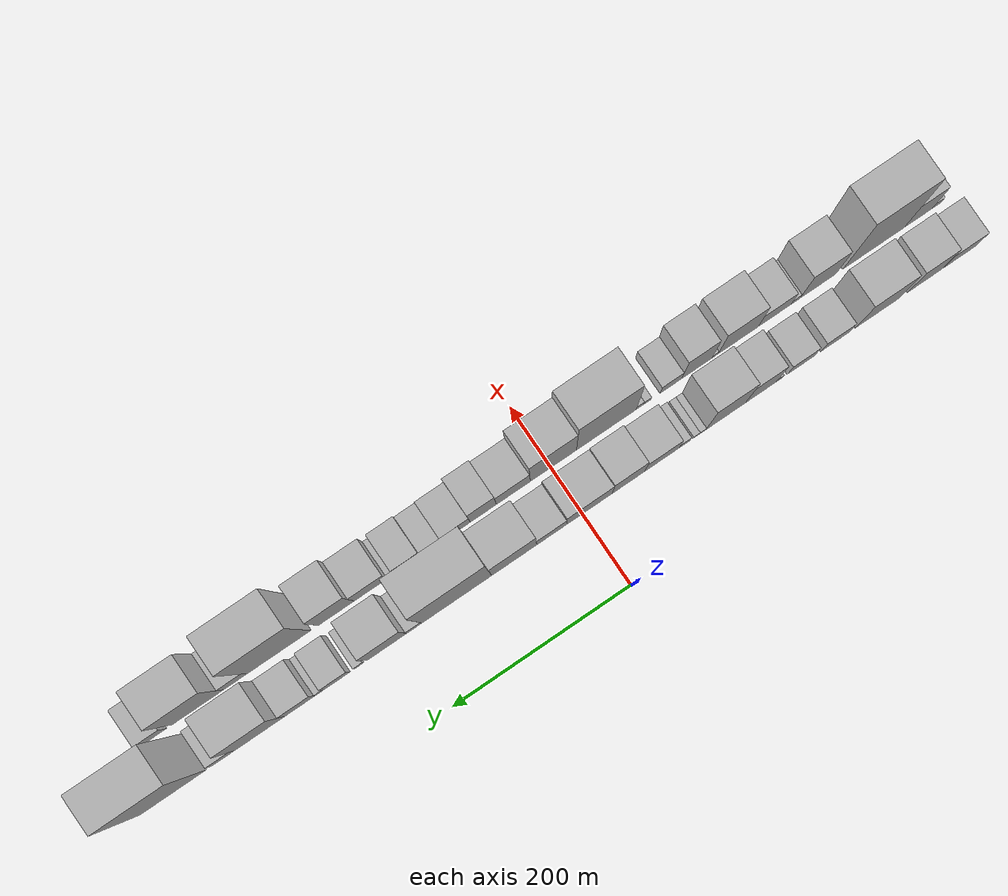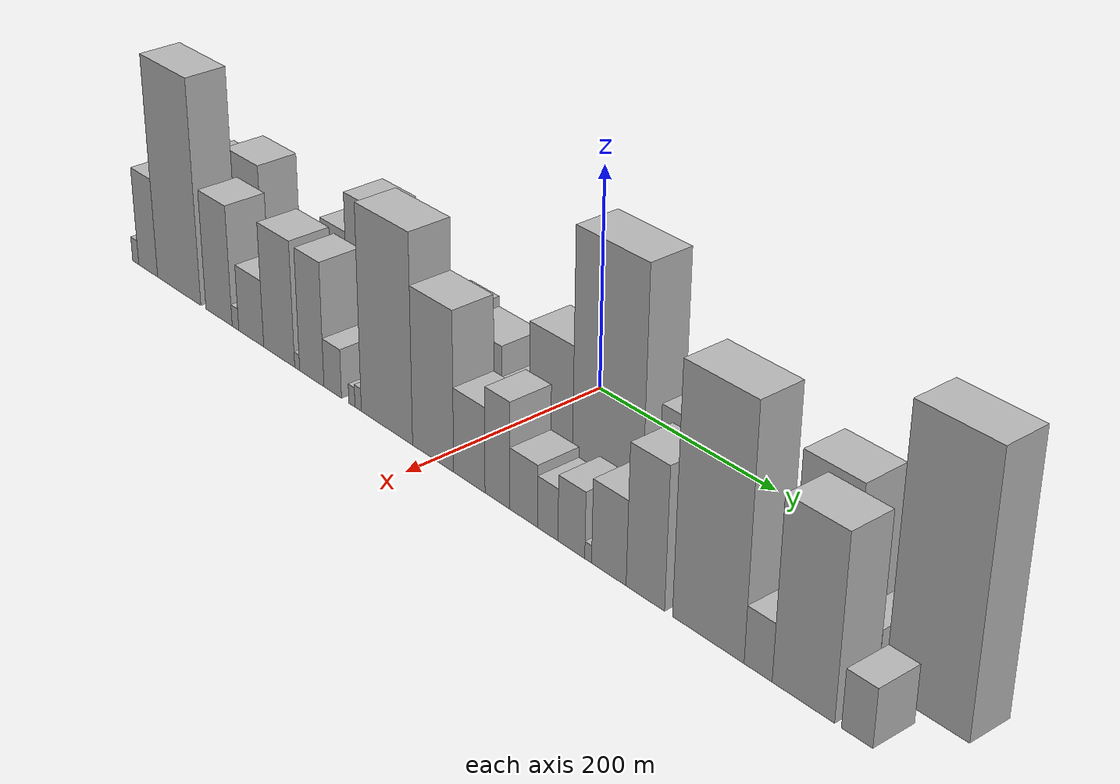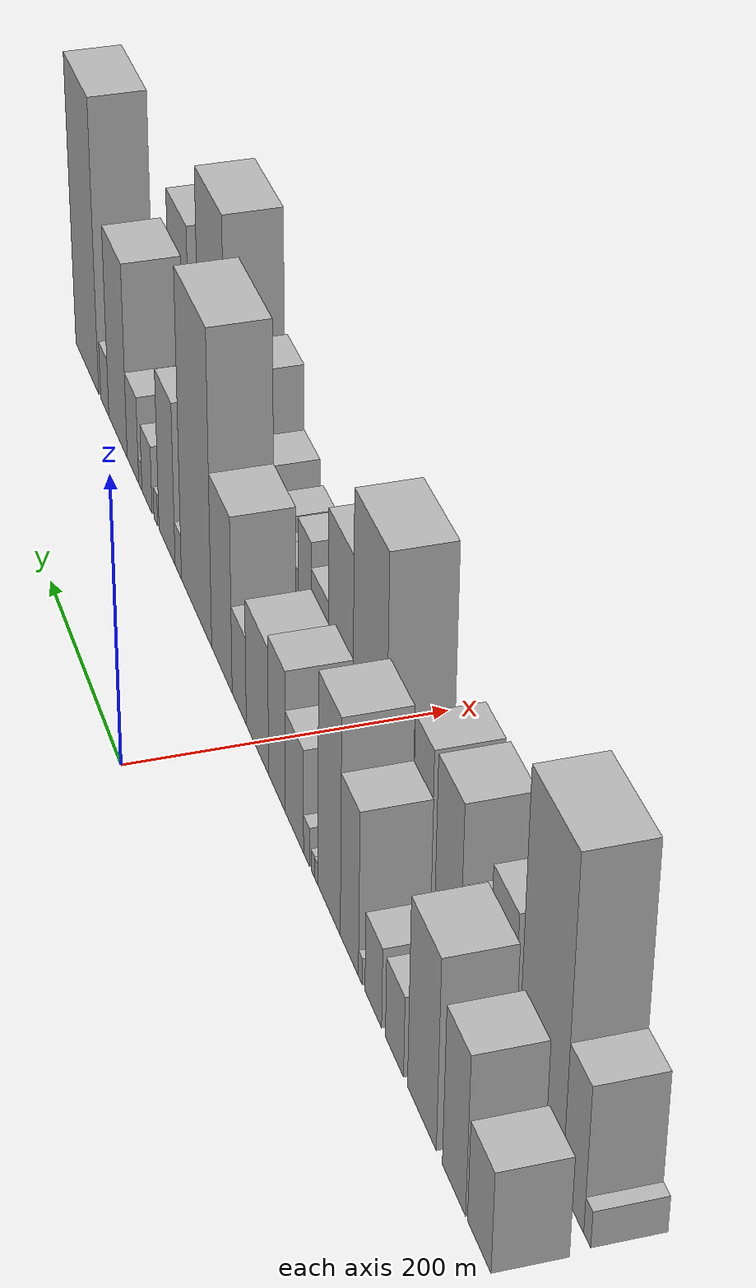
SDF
<sdf version="1.6">
 <world name="default">
  <scene>
   <sky><clouds><speed>12</speed></clouds></sky>
   <ambient>0.4 0.4 0.4 1</ambient>
   <background>0.7 0.7 0.7 1</background>
   <shadows>1</shadows>
  </scene>
  <gravity>0 0 -9.8066</gravity>
  <magnetic_field>6e-06 2.3e-05 -4.2e-05</magnetic_field>
  <physics default="0" name="default_physics" type="ode">
   <ode>
    <solver>
     <type>quick</type>
     <iters>10</iters>
     <sor>1.0</sor>
     <use_dynamic_moi_rescaling>0</use_dynamic_moi_rescaling>
    </solver>
    <constraints>
     <cfm>0</cfm>
     <erp>0.2</erp>
     <contact_max_correcting_vel>100</contact_max_correcting_vel>
     <contact_surface_layer>0.001</contact_surface_layer>
    </constraints>
   </ode>
   <max_step_size>0.004</max_step_size>
   <real_time_factor>1</real_time_factor>
   <real_time_update_rate>250</real_time_update_rate>
  </physics>
  <light name="sun" type="directional">
   <pose>0 0 10 0 0 0</pose>
   <diffuse>0.8 0.8 0.8 1</diffuse>
   <specular>0.2 0.2 0.2 1</specular>
   <attenuation>
    <range>1000</range>
    <constant>0.9</constant>
    <linear>0.01</linear>
    <quadratic>0.001</quadratic>
   </attenuation>
   <direction>-0.5 0.1 -0.9</direction>
  </light>
  <model name="building_1">
   <static>1</static>
   <pose>100.0000 -425.5980 0 0.000000 0.000000 0.000000</pose>
   <link name="link">
    <pose>0 0 33.00 0 0 0</pose>
    <collision name="collision"><geometry><box><size>40.0000 36.8039 66.0000</size></box></geometry></collision>
    <visual name="visual">
     <cast_shadows>0</cast_shadows>
     <geometry><box><size>40.0000 36.8039 66.0000</size></box></geometry>
     <material>
      <script>
       <uri>model://HANNAS_wall/materials/scripts</uri>
       <uri>model://HANNAS_wall/materials/textures</uri>
       <name>vrc/HANNAS_wall</name>
      </script>
     </material>
    </visual>
   </link>
  </model>
  <model name="building_2">
   <static>1</static>
   <pose>100.0000 -385.3011 0 0.000000 0.000000 0.000000</pose>
   <link name="link">
    <pose>0 0 52.50 0 0 0</pose>
    <collision name="collision"><geometry><box><size>40.0000 37.7899 105.0000</size></box></geometry></collision>
    <visual name="visual">
     <cast_shadows>0</cast_shadows>
     <geometry><box><size>40.0000 37.7899 105.0000</size></box></geometry>
     <material>
      <script>
       <uri>model://HANNAS_wall/materials/scripts</uri>
       <uri>model://HANNAS_wall/materials/textures</uri>
       <name>vrc/HANNAS_wall</name>
      </script>
     </material>
    </visual>
   </link>
  </model>
  <model name="building_3">
   <static>1</static>
   <pose>100.0000 -331.7392 0 0.000000 0.000000 0.000000</pose>
   <link name="link">
    <pose>0 0 63.00 0 0 0</pose>
    <collision name="collision"><geometry><box><size>40.0000 49.3339 126.0000</size></box></geometry></collision>
    <visual name="visual">
     <cast_shadows>0</cast_shadows>
     <geometry><box><size>40.0000 49.3339 126.0000</size></box></geometry>
     <material>
      <script>
       <uri>model://HANNAS_wall/materials/scripts</uri>
       <uri>model://HANNAS_wall/materials/textures</uri>
       <name>vrc/HANNAS_wall</name>
      </script>
     </material>
    </visual>
   </link>
  </model>
  <model name="building_4">
   <static>1</static>
   <pose>100.0000 -283.8848 0 0.000000 0.000000 0.000000</pose>
   <link name="link">
    <pose>0 0 27.00 0 0 0</pose>
    <collision name="collision"><geometry><box><size>40.0000 32.3749 54.0000</size></box></geometry></collision>
    <visual name="visual">
     <cast_shadows>0</cast_shadows>
     <geometry><box><size>40.0000 32.3749 54.0000</size></box></geometry>
     <material>
      <script>
       <uri>model://HANNAS_wall/materials/scripts</uri>
       <uri>model://HANNAS_wall/materials/textures</uri>
       <name>vrc/HANNAS_wall</name>
      </script>
     </material>
    </visual>
   </link>
  </model>
  <model name="building_5">
   <static>1</static>
   <pose>100.0000 -245.2788 0 0.000000 0.000000 0.000000</pose>
   <link name="link">
    <pose>0 0 27.00 0 0 0</pose>
    <collision name="collision"><geometry><box><size>40.0000 30.8370 54.0000</size></box></geometry></collision>
    <visual name="visual">
     <cast_shadows>0</cast_shadows>
     <geometry><box><size>40.0000 30.8370 54.0000</size></box></geometry>
     <material>
      <script>
       <uri>model://HANNAS_wall/materials/scripts</uri>
       <uri>model://HANNAS_wall/materials/textures</uri>
       <name>vrc/HANNAS_wall</name>
      </script>
     </material>
    </visual>
   </link>
  </model>
  <model name="building_6">
   <static>1</static>
   <pose>100.0000 -221.1470 0 0.000000 0.000000 0.000000</pose>
   <link name="link">
    <pose>0 0 9.00 0 0 0</pose>
    <collision name="collision"><geometry><box><size>40.0000 7.4267 18.0000</size></box></geometry></collision>
    <visual name="visual">
     <cast_shadows>0</cast_shadows>
     <geometry><box><size>40.0000 7.4267 18.0000</size></box></geometry>
     <material>
      <script>
       <uri>model://HANNAS_wall/materials/scripts</uri>
       <uri>model://HANNAS_wall/materials/textures</uri>
       <name>vrc/HANNAS_wall</name>
      </script>
     </material>
    </visual>
   </link>
  </model>
  <model name="building_7">
   <static>1</static>
   <pose>100.0000 -199.9410 0 0.000000 0.000000 0.000000</pose>
   <link name="link">
    <pose>0 0 55.50 0 0 0</pose>
    <collision name="collision"><geometry><box><size>40.0000 34.9854 111.0000</size></box></geometry></collision>
    <visual name="visual">
     <cast_shadows>0</cast_shadows>
     <geometry><box><size>40.0000 34.9854 111.0000</size></box></geometry>
     <material>
      <script>
       <uri>model://HANNAS_wall/materials/scripts</uri>
       <uri>model://HANNAS_wall/materials/textures</uri>
       <name>vrc/HANNAS_wall</name>
      </script>
     </material>
    </visual>
   </link>
  </model>
  <model name="building_8">
   <static>1</static>
   <pose>100.0000 -160.2202 0 0.000000 0.000000 0.000000</pose>
   <link name="link">
    <pose>0 0 73.50 0 0 0</pose>
    <collision name="collision"><geometry><box><size>40.0000 44.4563 147.0000</size></box></geometry></collision>
    <visual name="visual">
     <cast_shadows>0</cast_shadows>
     <geometry><box><size>40.0000 44.4563 147.0000</size></box></geometry>
     <material>
      <script>
       <uri>model://HANNAS_wall/materials/scripts</uri>
       <uri>model://HANNAS_wall/materials/textures</uri>
       <name>vrc/HANNAS_wall</name>
      </script>
     </material>
    </visual>
   </link>
  </model>
  <model name="building_9">
   <static>1</static>
   <pose>100.0000 -134.4375 0 0.000000 0.000000 0.000000</pose>
   <link name="link">
    <pose>0 0 7.50 0 0 0</pose>
    <collision name="collision"><geometry><box><size>40.0000 7.1090 15.0000</size></box></geometry></collision>
    <visual name="visual">
     <cast_shadows>0</cast_shadows>
     <geometry><box><size>40.0000 7.1090 15.0000</size></box></geometry>
     <material>
      <script>
       <uri>model://HANNAS_wall/materials/scripts</uri>
       <uri>model://HANNAS_wall/materials/textures</uri>
       <name>vrc/HANNAS_wall</name>
      </script>
     </material>
    </visual>
   </link>
  </model>
  <model name="building_10">
   <static>1</static>
   <pose>100.0000 -127.1507 0 0.000000 0.000000 0.000000</pose>
   <link name="link">
    <pose>0 0 7.50 0 0 0</pose>
    <collision name="collision"><geometry><box><size>40.0000 7.4647 15.0000</size></box></geometry></collision>
    <visual name="visual">
     <cast_shadows>0</cast_shadows>
     <geometry><box><size>40.0000 7.4647 15.0000</size></box></geometry>
     <material>
      <script>
       <uri>model://HANNAS_wall/materials/scripts</uri>
       <uri>model://HANNAS_wall/materials/textures</uri>
       <name>vrc/HANNAS_wall</name>
      </script>
     </material>
    </visual>
   </link>
  </model>
  <model name="building_11">
   <static>1</static>
   <pose>100.0000 -114.1948 0 0.000000 0.000000 0.000000</pose>
   <link name="link">
    <pose>0 0 13.50 0 0 0</pose>
    <collision name="collision"><geometry><box><size>40.0000 12.4471 27.0000</size></box></geometry></collision>
    <visual name="visual">
     <cast_shadows>0</cast_shadows>
     <geometry><box><size>40.0000 12.4471 27.0000</size></box></geometry>
     <material>
      <script>
       <uri>model://HANNAS_wall/materials/scripts</uri>
       <uri>model://HANNAS_wall/materials/textures</uri>
       <name>vrc/HANNAS_wall</name>
      </script>
     </material>
    </visual>
   </link>
  </model>
  <model name="building_12">
   <static>1</static>
   <pose>100.0000 -88.6008 0 0.000000 0.000000 0.000000</pose>
   <link name="link">
    <pose>0 0 36.00 0 0 0</pose>
    <collision name="collision"><geometry><box><size>40.0000 38.7409 72.0000</size></box></geometry></collision>
    <visual name="visual">
     <cast_shadows>0</cast_shadows>
     <geometry><box><size>40.0000 38.7409 72.0000</size></box></geometry>
     <material>
      <script>
       <uri>model://HANNAS_wall/materials/scripts</uri>
       <uri>model://HANNAS_wall/materials/textures</uri>
       <name>vrc/HANNAS_wall</name>
      </script>
     </material>
    </visual>
   </link>
  </model>
  <model name="building_13">
   <static>1</static>
   <pose>100.0000 -50.9353 0 0.000000 0.000000 0.000000</pose>
   <link name="link">
    <pose>0 0 49.50 0 0 0</pose>
    <collision name="collision"><geometry><box><size>40.0000 36.5901 99.0000</size></box></geometry></collision>
    <visual name="visual">
     <cast_shadows>0</cast_shadows>
     <geometry><box><size>40.0000 36.5901 99.0000</size></box></geometry>
     <material>
      <script>
       <uri>model://HANNAS_wall/materials/scripts</uri>
       <uri>model://HANNAS_wall/materials/textures</uri>
       <name>vrc/HANNAS_wall</name>
      </script>
     </material>
    </visual>
   </link>
  </model>
  <model name="building_14">
   <static>1</static>
   <pose>100.0000 -7.1161 0 0.000000 0.000000 0.000000</pose>
   <link name="link">
    <pose>0 0 45.00 0 0 0</pose>
    <collision name="collision"><geometry><box><size>40.0000 51.0484 90.0000</size></box></geometry></collision>
    <visual name="visual">
     <cast_shadows>0</cast_shadows>
     <geometry><box><size>40.0000 51.0484 90.0000</size></box></geometry>
     <material>
      <script>
       <uri>model://HANNAS_wall/materials/scripts</uri>
       <uri>model://HANNAS_wall/materials/textures</uri>
       <name>vrc/HANNAS_wall</name>
      </script>
     </material>
    </visual>
   </link>
  </model>
  <model name="building_15">
   <static>1</static>
   <pose>100.0000 35.0644 0 0.000000 0.000000 0.000000</pose>
   <link name="link">
    <pose>0 0 31.50 0 0 0</pose>
    <collision name="collision"><geometry><box><size>40.0000 33.3125 63.0000</size></box></geometry></collision>
    <visual name="visual">
     <cast_shadows>0</cast_shadows>
     <geometry><box><size>40.0000 33.3125 63.0000</size></box></geometry>
     <material>
      <script>
       <uri>model://HANNAS_wall/materials/scripts</uri>
       <uri>model://HANNAS_wall/materials/textures</uri>
       <name>vrc/HANNAS_wall</name>
      </script>
     </material>
    </visual>
   </link>
  </model>
  <model name="building_16">
   <static>1</static>
   <pose>100.0000 76.6523 0 0.000000 0.000000 0.000000</pose>
   <link name="link">
    <pose>0 0 63.00 0 0 0</pose>
    <collision name="collision"><geometry><box><size>40.0000 49.8633 126.0000</size></box></geometry></collision>
    <visual name="visual">
     <cast_shadows>0</cast_shadows>
     <geometry><box><size>40.0000 49.8633 126.0000</size></box></geometry>
     <material>
      <script>
       <uri>model://HANNAS_wall/materials/scripts</uri>
       <uri>model://HANNAS_wall/materials/textures</uri>
       <name>vrc/HANNAS_wall</name>
      </script>
     </material>
    </visual>
   </link>
  </model>
  <model name="building_17">
   <static>1</static>
   <pose>100.0000 140.3961 0 0.000000 0.000000 0.000000</pose>
   <link name="link">
    <pose>0 0 112.50 0 0 0</pose>
    <collision name="collision"><geometry><box><size>40.0000 77.6243 225.0000</size></box></geometry></collision>
    <visual name="visual">
     <cast_shadows>0</cast_shadows>
     <geometry><box><size>40.0000 77.6243 225.0000</size></box></geometry>
     <material>
      <script>
       <uri>model://HANNAS_wall/materials/scripts</uri>
       <uri>model://HANNAS_wall/materials/textures</uri>
       <name>vrc/HANNAS_wall</name>
      </script>
     </material>
    </visual>
   </link>
  </model>
  <model name="building_18">
   <static>1</static>
   <pose>100.0000 187.5888 0 0.000000 0.000000 0.000000</pose>
   <link name="link">
    <pose>0 0 16.50 0 0 0</pose>
    <collision name="collision"><geometry><box><size>40.0000 16.7612 33.0000</size></box></geometry></collision>
    <visual name="visual">
     <cast_shadows>0</cast_shadows>
     <geometry><box><size>40.0000 16.7612 33.0000</size></box></geometry>
     <material>
      <script>
       <uri>model://HANNAS_wall/materials/scripts</uri>
       <uri>model://HANNAS_wall/materials/textures</uri>
       <name>vrc/HANNAS_wall</name>
      </script>
     </material>
    </visual>
   </link>
  </model>
  <model name="building_19">
   <static>1</static>
   <pose>100.0000 217.8704 0 0.000000 0.000000 0.000000</pose>
   <link name="link">
    <pose>0 0 60.00 0 0 0</pose>
    <collision name="collision"><geometry><box><size>40.0000 43.8018 120.0000</size></box></geometry></collision>
    <visual name="visual">
     <cast_shadows>0</cast_shadows>
     <geometry><box><size>40.0000 43.8018 120.0000</size></box></geometry>
     <material>
      <script>
       <uri>model://HANNAS_wall/materials/scripts</uri>
       <uri>model://HANNAS_wall/materials/textures</uri>
       <name>vrc/HANNAS_wall</name>
      </script>
     </material>
    </visual>
   </link>
  </model>
  <model name="building_20">
   <static>1</static>
   <pose>100.0000 248.9508 0 0.000000 0.000000 0.000000</pose>
   <link name="link">
    <pose>0 0 12.00 0 0 0</pose>
    <collision name="collision"><geometry><box><size>40.0000 10.3591 24.0000</size></box></geometry></collision>
    <visual name="visual">
     <cast_shadows>0</cast_shadows>
     <geometry><box><size>40.0000 10.3591 24.0000</size></box></geometry>
     <material>
      <script>
       <uri>model://HANNAS_wall/materials/scripts</uri>
       <uri>model://HANNAS_wall/materials/textures</uri>
       <name>vrc/HANNAS_wall</name>
      </script>
     </material>
    </visual>
   </link>
  </model>
  <model name="building_21">
   <static>1</static>
   <pose>100.0000 273.5681 0 0.000000 0.000000 0.000000</pose>
   <link name="link">
    <pose>0 0 25.50 0 0 0</pose>
    <collision name="collision"><geometry><box><size>40.0000 28.8756 51.0000</size></box></geometry></collision>
    <visual name="visual">
     <cast_shadows>0</cast_shadows>
     <geometry><box><size>40.0000 28.8756 51.0000</size></box></geometry>
     <material>
      <script>
       <uri>model://HANNAS_wall/materials/scripts</uri>
       <uri>model://HANNAS_wall/materials/textures</uri>
       <name>vrc/HANNAS_wall</name>
      </script>
     </material>
    </visual>
   </link>
  </model>
  <model name="building_22">
   <static>1</static>
   <pose>100.0000 292.6684 0 0.000000 0.000000 0.000000</pose>
   <link name="link">
    <pose>0 0 10.50 0 0 0</pose>
    <collision name="collision"><geometry><box><size>40.0000 9.3250 21.0000</size></box></geometry></collision>
    <visual name="visual">
     <cast_shadows>0</cast_shadows>
     <geometry><box><size>40.0000 9.3250 21.0000</size></box></geometry>
     <material>
      <script>
       <uri>model://HANNAS_wall/materials/scripts</uri>
       <uri>model://HANNAS_wall/materials/textures</uri>
       <name>vrc/HANNAS_wall</name>
      </script>
     </material>
    </visual>
   </link>
  </model>
  <model name="building_23">
   <static>1</static>
   <pose>100.0000 314.0766 0 0.000000 0.000000 0.000000</pose>
   <link name="link">
    <pose>0 0 33.00 0 0 0</pose>
    <collision name="collision"><geometry><box><size>40.0000 33.4914 66.0000</size></box></geometry></collision>
    <visual name="visual">
     <cast_shadows>0</cast_shadows>
     <geometry><box><size>40.0000 33.4914 66.0000</size></box></geometry>
     <material>
      <script>
       <uri>model://HANNAS_wall/materials/scripts</uri>
       <uri>model://HANNAS_wall/materials/textures</uri>
       <name>vrc/HANNAS_wall</name>
      </script>
     </material>
    </visual>
   </link>
  </model>
  <model name="building_24">
   <static>1</static>
   <pose>100.0000 358.5676 0 0.000000 0.000000 0.000000</pose>
   <link name="link">
    <pose>0 0 73.50 0 0 0</pose>
    <collision name="collision"><geometry><box><size>40.0000 55.4907 147.0000</size></box></geometry></collision>
    <visual name="visual">
     <cast_shadows>0</cast_shadows>
     <geometry><box><size>40.0000 55.4907 147.0000</size></box></geometry>
     <material>
      <script>
       <uri>model://HANNAS_wall/materials/scripts</uri>
       <uri>model://HANNAS_wall/materials/textures</uri>
       <name>vrc/HANNAS_wall</name>
      </script>
     </material>
    </visual>
   </link>
  </model>
  <model name="building_25">
   <static>1</static>
   <pose>100.0000 399.0191 0 0.000000 0.000000 0.000000</pose>
   <link name="link">
    <pose>0 0 22.50 0 0 0</pose>
    <collision name="collision"><geometry><box><size>40.0000 25.4123 45.0000</size></box></geometry></collision>
    <visual name="visual">
     <cast_shadows>0</cast_shadows>
     <geometry><box><size>40.0000 25.4123 45.0000</size></box></geometry>
     <material>
      <script>
       <uri>model://HANNAS_wall/materials/scripts</uri>
       <uri>model://HANNAS_wall/materials/textures</uri>
       <name>vrc/HANNAS_wall</name>
      </script>
     </material>
    </visual>
   </link>
  </model>
  <model name="building_26">
   <static>1</static>
   <pose>100.0000 454.3628 0 0.000000 0.000000 0.000000</pose>
   <link name="link">
    <pose>0 0 112.50 0 0 0</pose>
    <collision name="collision"><geometry><box><size>40.0000 73.2751 225.0000</size></box></geometry></collision>
    <visual name="visual">
     <cast_shadows>0</cast_shadows>
     <geometry><box><size>40.0000 73.2751 225.0000</size></box></geometry>
     <material>
      <script>
       <uri>model://HANNAS_wall/materials/scripts</uri>
       <uri>model://HANNAS_wall/materials/textures</uri>
       <name>vrc/HANNAS_wall</name>
      </script>
     </material>
    </visual>
   </link>
  </model>
  <model name="building_27">
   <static>1</static>
   <pose>152.0000 -435.8978 0 0.000000 0.000000 0.000000</pose>
   <link name="link">
    <pose>0 0 12.00 0 0 0</pose>
    <collision name="collision"><geometry><box><size>40.0000 10.2043 24.0000</size></box></geometry></collision>
    <visual name="visual">
     <cast_shadows>0</cast_shadows>
     <geometry><box><size>40.0000 10.2043 24.0000</size></box></geometry>
     <material>
      <script>
       <uri>model://HANNAS_wall/materials/scripts</uri>
       <uri>model://HANNAS_wall/materials/textures</uri>
       <name>vrc/HANNAS_wall</name>
      </script>
     </material>
    </visual>
   </link>
  </model>
  <model name="building_28">
   <static>1</static>
   <pose>152.0000 -414.9461 0 0.000000 0.000000 0.000000</pose>
   <link name="link">
    <pose>0 0 48.00 0 0 0</pose>
    <collision name="collision"><geometry><box><size>40.0000 31.6992 96.0000</size></box></geometry></collision>
    <visual name="visual">
     <cast_shadows>0</cast_shadows>
     <geometry><box><size>40.0000 31.6992 96.0000</size></box></geometry>
     <material>
      <script>
       <uri>model://HANNAS_wall/materials/scripts</uri>
       <uri>model://HANNAS_wall/materials/textures</uri>
       <name>vrc/HANNAS_wall</name>
      </script>
     </material>
    </visual>
   </link>
  </model>
  <model name="building_29">
   <static>1</static>
   <pose>152.0000 -364.1660 0 0.000000 0.000000 0.000000</pose>
   <link name="link">
    <pose>0 0 106.50 0 0 0</pose>
    <collision name="collision"><geometry><box><size>40.0000 69.8610 213.0000</size></box></geometry></collision>
    <visual name="visual">
     <cast_shadows>0</cast_shadows>
     <geometry><box><size>40.0000 69.8610 213.0000</size></box></geometry>
     <material>
      <script>
       <uri>model://HANNAS_wall/materials/scripts</uri>
       <uri>model://HANNAS_wall/materials/textures</uri>
       <name>vrc/HANNAS_wall</name>
      </script>
     </material>
    </visual>
   </link>
  </model>
  <model name="building_30">
   <static>1</static>
   <pose>152.0000 -300.8264 0 0.000000 0.000000 0.000000</pose>
   <link name="link">
    <pose>0 0 57.00 0 0 0</pose>
    <collision name="collision"><geometry><box><size>40.0000 40.8181 114.0000</size></box></geometry></collision>
    <visual name="visual">
     <cast_shadows>0</cast_shadows>
     <geometry><box><size>40.0000 40.8181 114.0000</size></box></geometry>
     <material>
      <script>
       <uri>model://HANNAS_wall/materials/scripts</uri>
       <uri>model://HANNAS_wall/materials/textures</uri>
       <name>vrc/HANNAS_wall</name>
      </script>
     </material>
    </visual>
   </link>
  </model>
  <model name="building_31">
   <static>1</static>
   <pose>152.0000 -275.4124 0 0.000000 0.000000 0.000000</pose>
   <link name="link">
    <pose>0 0 10.50 0 0 0</pose>
    <collision name="collision"><geometry><box><size>40.0000 10.0100 21.0000</size></box></geometry></collision>
    <visual name="visual">
     <cast_shadows>0</cast_shadows>
     <geometry><box><size>40.0000 10.0100 21.0000</size></box></geometry>
     <material>
      <script>
       <uri>model://HANNAS_wall/materials/scripts</uri>
       <uri>model://HANNAS_wall/materials/textures</uri>
       <name>vrc/HANNAS_wall</name>
      </script>
     </material>
    </visual>
   </link>
  </model>
  <model name="building_32">
   <static>1</static>
   <pose>152.0000 -251.6463 0 0.000000 0.000000 0.000000</pose>
   <link name="link">
    <pose>0 0 31.50 0 0 0</pose>
    <collision name="collision"><geometry><box><size>40.0000 37.5222 63.0000</size></box></geometry></collision>
    <visual name="visual">
     <cast_shadows>0</cast_shadows>
     <geometry><box><size>40.0000 37.5222 63.0000</size></box></geometry>
     <material>
      <script>
       <uri>model://HANNAS_wall/materials/scripts</uri>
       <uri>model://HANNAS_wall/materials/textures</uri>
       <name>vrc/HANNAS_wall</name>
      </script>
     </material>
    </visual>
   </link>
  </model>
  <model name="building_33">
   <static>1</static>
   <pose>152.0000 -210.3397 0 0.000000 0.000000 0.000000</pose>
   <link name="link">
    <pose>0 0 58.50 0 0 0</pose>
    <collision name="collision"><geometry><box><size>40.0000 45.0910 117.0000</size></box></geometry></collision>
    <visual name="visual">
     <cast_shadows>0</cast_shadows>
     <geometry><box><size>40.0000 45.0910 117.0000</size></box></geometry>
     <material>
      <script>
       <uri>model://HANNAS_wall/materials/scripts</uri>
       <uri>model://HANNAS_wall/materials/textures</uri>
       <name>vrc/HANNAS_wall</name>
      </script>
     </material>
    </visual>
   </link>
  </model>
  <model name="building_34">
   <static>1</static>
   <pose>152.0000 -184.2583 0 0.000000 0.000000 0.000000</pose>
   <link name="link">
    <pose>0 0 7.50 0 0 0</pose>
    <collision name="collision"><geometry><box><size>40.0000 7.0717 15.0000</size></box></geometry></collision>
    <visual name="visual">
     <cast_shadows>0</cast_shadows>
     <geometry><box><size>40.0000 7.0717 15.0000</size></box></geometry>
     <material>
      <script>
       <uri>model://HANNAS_wall/materials/scripts</uri>
       <uri>model://HANNAS_wall/materials/textures</uri>
       <name>vrc/HANNAS_wall</name>
      </script>
     </material>
    </visual>
   </link>
  </model>
  <model name="building_35">
   <static>1</static>
   <pose>152.0000 -163.5564 0 0.000000 0.000000 0.000000</pose>
   <link name="link">
    <pose>0 0 57.00 0 0 0</pose>
    <collision name="collision"><geometry><box><size>40.0000 34.3320 114.0000</size></box></geometry></collision>
    <visual name="visual">
     <cast_shadows>0</cast_shadows>
     <geometry><box><size>40.0000 34.3320 114.0000</size></box></geometry>
     <material>
      <script>
       <uri>model://HANNAS_wall/materials/scripts</uri>
       <uri>model://HANNAS_wall/materials/textures</uri>
       <name>vrc/HANNAS_wall</name>
      </script>
     </material>
    </visual>
   </link>
  </model>
  <model name="building_36">
   <static>1</static>
   <pose>152.0000 -134.2992 0 0.000000 0.000000 0.000000</pose>
   <link name="link">
    <pose>0 0 22.50 0 0 0</pose>
    <collision name="collision"><geometry><box><size>40.0000 24.1825 45.0000</size></box></geometry></collision>
    <visual name="visual">
     <cast_shadows>0</cast_shadows>
     <geometry><box><size>40.0000 24.1825 45.0000</size></box></geometry>
     <material>
      <script>
       <uri>model://HANNAS_wall/materials/scripts</uri>
       <uri>model://HANNAS_wall/materials/textures</uri>
       <name>vrc/HANNAS_wall</name>
      </script>
     </material>
    </visual>
   </link>
  </model>
  <model name="building_37">
   <static>1</static>
   <pose>152.0000 -108.0613 0 0.000000 0.000000 0.000000</pose>
   <link name="link">
    <pose>0 0 9.00 0 0 0</pose>
    <collision name="collision"><geometry><box><size>40.0000 8.2933 18.0000</size></box></geometry></collision>
    <visual name="visual">
     <cast_shadows>0</cast_shadows>
     <geometry><box><size>40.0000 8.2933 18.0000</size></box></geometry>
     <material>
      <script>
       <uri>model://HANNAS_wall/materials/scripts</uri>
       <uri>model://HANNAS_wall/materials/textures</uri>
       <name>vrc/HANNAS_wall</name>
      </script>
     </material>
    </visual>
   </link>
  </model>
  <model name="building_38">
   <static>1</static>
   <pose>152.0000 -99.6352 0 0.000000 0.000000 0.000000</pose>
   <link name="link">
    <pose>0 0 10.50 0 0 0</pose>
    <collision name="collision"><geometry><box><size>40.0000 8.5588 21.0000</size></box></geometry></collision>
    <visual name="visual">
     <cast_shadows>0</cast_shadows>
     <geometry><box><size>40.0000 8.5588 21.0000</size></box></geometry>
     <material>
      <script>
       <uri>model://HANNAS_wall/materials/scripts</uri>
       <uri>model://HANNAS_wall/materials/textures</uri>
       <name>vrc/HANNAS_wall</name>
      </script>
     </material>
    </visual>
   </link>
  </model>
  <model name="building_39">
   <static>1</static>
   <pose>152.0000 -61.7394 0 0.000000 0.000000 0.000000</pose>
   <link name="link">
    <pose>0 0 93.00 0 0 0</pose>
    <collision name="collision"><geometry><box><size>40.0000 67.2329 186.0000</size></box></geometry></collision>
    <visual name="visual">
     <cast_shadows>0</cast_shadows>
     <geometry><box><size>40.0000 67.2329 186.0000</size></box></geometry>
     <material>
      <script>
       <uri>model://HANNAS_wall/materials/scripts</uri>
       <uri>model://HANNAS_wall/materials/textures</uri>
       <name>vrc/HANNAS_wall</name>
      </script>
     </material>
    </visual>
   </link>
  </model>
  <model name="building_40">
   <static>1</static>
   <pose>152.0000 -2.3646 0 0.000000 0.000000 0.000000</pose>
   <link name="link">
    <pose>0 0 70.50 0 0 0</pose>
    <collision name="collision"><geometry><box><size>40.0000 51.5165 141.0000</size></box></geometry></collision>
    <visual name="visual">
     <cast_shadows>0</cast_shadows>
     <geometry><box><size>40.0000 51.5165 141.0000</size></box></geometry>
     <material>
      <script>
       <uri>model://HANNAS_wall/materials/scripts</uri>
       <uri>model://HANNAS_wall/materials/textures</uri>
       <name>vrc/HANNAS_wall</name>
      </script>
     </material>
    </visual>
   </link>
  </model>
  <model name="building_41">
   <static>1</static>
   <pose>152.0000 42.3856 0 0.000000 0.000000 0.000000</pose>
   <link name="link">
    <pose>0 0 37.50 0 0 0</pose>
    <collision name="collision"><geometry><box><size>40.0000 37.9839 75.0000</size></box></geometry></collision>
    <visual name="visual">
     <cast_shadows>0</cast_shadows>
     <geometry><box><size>40.0000 37.9839 75.0000</size></box></geometry>
     <material>
      <script>
       <uri>model://HANNAS_wall/materials/scripts</uri>
       <uri>model://HANNAS_wall/materials/textures</uri>
       <name>vrc/HANNAS_wall</name>
      </script>
     </material>
    </visual>
   </link>
  </model>
  <model name="building_42">
   <static>1</static>
   <pose>152.0000 75.9670 0 0.000000 0.000000 0.000000</pose>
   <link name="link">
    <pose>0 0 46.50 0 0 0</pose>
    <collision name="collision"><geometry><box><size>40.0000 29.1789 93.0000</size></box></geometry></collision>
    <visual name="visual">
     <cast_shadows>0</cast_shadows>
     <geometry><box><size>40.0000 29.1789 93.0000</size></box></geometry>
     <material>
      <script>
       <uri>model://HANNAS_wall/materials/scripts</uri>
       <uri>model://HANNAS_wall/materials/textures</uri>
       <name>vrc/HANNAS_wall</name>
      </script>
     </material>
    </visual>
   </link>
  </model>
  <model name="building_43">
   <static>1</static>
   <pose>152.0000 106.5246 0 0.000000 0.000000 0.000000</pose>
   <link name="link">
    <pose>0 0 27.00 0 0 0</pose>
    <collision name="collision"><geometry><box><size>40.0000 31.9362 54.0000</size></box></geometry></collision>
    <visual name="visual">
     <cast_shadows>0</cast_shadows>
     <geometry><box><size>40.0000 31.9362 54.0000</size></box></geometry>
     <material>
      <script>
       <uri>model://HANNAS_wall/materials/scripts</uri>
       <uri>model://HANNAS_wall/materials/textures</uri>
       <name>vrc/HANNAS_wall</name>
      </script>
     </material>
    </visual>
   </link>
  </model>
  <model name="building_44">
   <static>1</static>
   <pose>152.0000 134.0115 0 0.000000 0.000000 0.000000</pose>
   <link name="link">
    <pose>0 0 22.50 0 0 0</pose>
    <collision name="collision"><geometry><box><size>40.0000 23.0376 45.0000</size></box></geometry></collision>
    <visual name="visual">
     <cast_shadows>0</cast_shadows>
     <geometry><box><size>40.0000 23.0376 45.0000</size></box></geometry>
     <material>
      <script>
       <uri>model://HANNAS_wall/materials/scripts</uri>
       <uri>model://HANNAS_wall/materials/textures</uri>
       <name>vrc/HANNAS_wall</name>
      </script>
     </material>
    </visual>
   </link>
  </model>
  <model name="building_45">
   <static>1</static>
   <pose>152.0000 160.4002 0 0.000000 0.000000 0.000000</pose>
   <link name="link">
    <pose>0 0 28.50 0 0 0</pose>
    <collision name="collision"><geometry><box><size>40.0000 29.7396 57.0000</size></box></geometry></collision>
    <visual name="visual">
     <cast_shadows>0</cast_shadows>
     <geometry><box><size>40.0000 29.7396 57.0000</size></box></geometry>
     <material>
      <script>
       <uri>model://HANNAS_wall/materials/scripts</uri>
       <uri>model://HANNAS_wall/materials/textures</uri>
       <name>vrc/HANNAS_wall</name>
      </script>
     </material>
    </visual>
   </link>
  </model>
  <model name="building_46">
   <static>1</static>
   <pose>152.0000 178.9739 0 0.000000 0.000000 0.000000</pose>
   <link name="link">
    <pose>0 0 7.50 0 0 0</pose>
    <collision name="collision"><geometry><box><size>40.0000 7.4079 15.0000</size></box></geometry></collision>
    <visual name="visual">
     <cast_shadows>0</cast_shadows>
     <geometry><box><size>40.0000 7.4079 15.0000</size></box></geometry>
     <material>
      <script>
       <uri>model://HANNAS_wall/materials/scripts</uri>
       <uri>model://HANNAS_wall/materials/textures</uri>
       <name>vrc/HANNAS_wall</name>
      </script>
     </material>
    </visual>
   </link>
  </model>
  <model name="building_47">
   <static>1</static>
   <pose>152.0000 201.1550 0 0.000000 0.000000 0.000000</pose>
   <link name="link">
    <pose>0 0 36.00 0 0 0</pose>
    <collision name="collision"><geometry><box><size>40.0000 36.9542 72.0000</size></box></geometry></collision>
    <visual name="visual">
     <cast_shadows>0</cast_shadows>
     <geometry><box><size>40.0000 36.9542 72.0000</size></box></geometry>
     <material>
      <script>
       <uri>model://HANNAS_wall/materials/scripts</uri>
       <uri>model://HANNAS_wall/materials/textures</uri>
       <name>vrc/HANNAS_wall</name>
      </script>
     </material>
    </visual>
   </link>
  </model>
  <model name="building_48">
   <static>1</static>
   <pose>152.0000 239.5925 0 0.000000 0.000000 0.000000</pose>
   <link name="link">
    <pose>0 0 60.00 0 0 0</pose>
    <collision name="collision"><geometry><box><size>40.0000 39.9208 120.0000</size></box></geometry></collision>
    <visual name="visual">
     <cast_shadows>0</cast_shadows>
     <geometry><box><size>40.0000 39.9208 120.0000</size></box></geometry>
     <material>
      <script>
       <uri>model://HANNAS_wall/materials/scripts</uri>
       <uri>model://HANNAS_wall/materials/textures</uri>
       <name>vrc/HANNAS_wall</name>
      </script>
     </material>
    </visual>
   </link>
  </model>
  <model name="building_49">
   <static>1</static>
   <pose>152.0000 302.7516 0 0.000000 0.000000 0.000000</pose>
   <link name="link">
    <pose>0 0 103.50 0 0 0</pose>
    <collision name="collision"><geometry><box><size>40.0000 70.3973 207.0000</size></box></geometry></collision>
    <visual name="visual">
     <cast_shadows>0</cast_shadows>
     <geometry><box><size>40.0000 70.3973 207.0000</size></box></geometry>
     <material>
      <script>
       <uri>model://HANNAS_wall/materials/scripts</uri>
       <uri>model://HANNAS_wall/materials/textures</uri>
       <name>vrc/HANNAS_wall</name>
      </script>
     </material>
    </visual>
   </link>
  </model>
  <model name="building_50">
   <static>1</static>
   <pose>152.0000 351.1710 0 0.000000 0.000000 0.000000</pose>
   <link name="link">
    <pose>0 0 24.00 0 0 0</pose>
    <collision name="collision"><geometry><box><size>40.0000 26.4416 48.0000</size></box></geometry></collision>
    <visual name="visual">
     <cast_shadows>0</cast_shadows>
     <geometry><box><size>40.0000 26.4416 48.0000</size></box></geometry>
     <material>
      <script>
       <uri>model://HANNAS_wall/materials/scripts</uri>
       <uri>model://HANNAS_wall/materials/textures</uri>
       <name>vrc/HANNAS_wall</name>
      </script>
     </material>
    </visual>
   </link>
  </model>
  <model name="building_51">
   <static>1</static>
   <pose>152.0000 392.8233 0 0.000000 0.000000 0.000000</pose>
   <link name="link">
    <pose>0 0 75.00 0 0 0</pose>
    <collision name="collision"><geometry><box><size>40.0000 56.8629 150.0000</size></box></geometry></collision>
    <visual name="visual">
     <cast_shadows>0</cast_shadows>
     <geometry><box><size>40.0000 56.8629 150.0000</size></box></geometry>
     <material>
      <script>
       <uri>model://HANNAS_wall/materials/scripts</uri>
       <uri>model://HANNAS_wall/materials/textures</uri>
       <name>vrc/HANNAS_wall</name>
      </script>
     </material>
    </visual>
   </link>
  </model>
  <model name="building_52">
   <static>1</static>
   <pose>152.0000 440.9651 0 0.000000 0.000000 0.000000</pose>
   <link name="link">
    <pose>0 0 24.00 0 0 0</pose>
    <collision name="collision"><geometry><box><size>40.0000 27.4207 48.0000</size></box></geometry></collision>
    <visual name="visual">
     <cast_shadows>0</cast_shadows>
     <geometry><box><size>40.0000 27.4207 48.0000</size></box></geometry>
     <material>
      <script>
       <uri>model://HANNAS_wall/materials/scripts</uri>
       <uri>model://HANNAS_wall/materials/textures</uri>
       <name>vrc/HANNAS_wall</name>
      </script>
     </material>
    </visual>
   </link>
  </model>
 </world>
</sdf>
